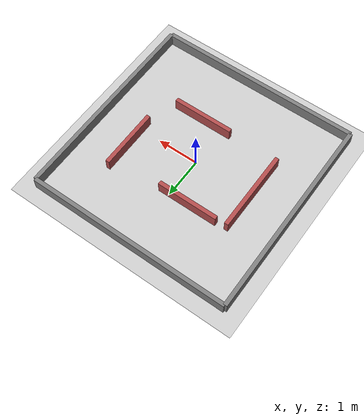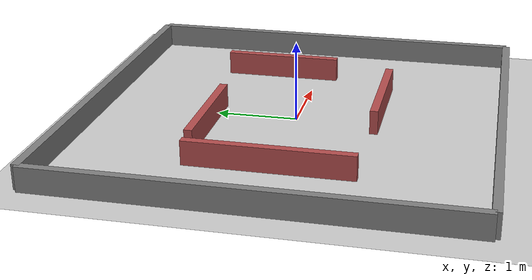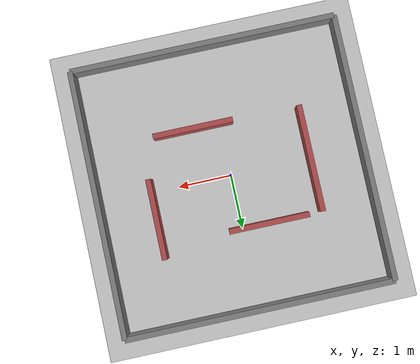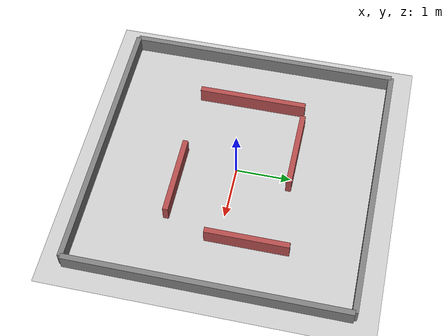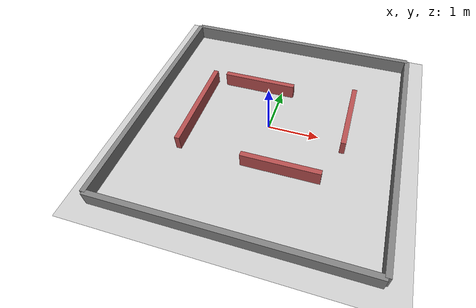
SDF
<?xml version="1.0" ?>
<sdf version="1.6">
  <world name="default">

    <include>
      <uri>model://ground_plane</uri>
    </include>

    <include>
      <uri>model://sun</uri>
    </include>

    <!-- Maze walls -->

    <!-- Outer walls -->
    <model name="wall_outer_1">
      <static>true</static>
      <pose>0 -2.5 0.15 0 0 0</pose>
      <link name="link">
        <collision name="collision">
          <geometry>
            <box><size>5 0.1 0.3</size></box>
          </geometry>
        </collision>
        <visual name="visual">
          <geometry>
            <box><size>5 0.1 0.3</size></box>
          </geometry>
          <material>
            <ambient>0.5 0.5 0.5 1</ambient>
          </material>
        </visual>
      </link>
    </model>

    <model name="wall_outer_2">
      <static>true</static>
      <pose>0 2.5 0.15 0 0 0</pose>
      <link name="link">
        <collision name="collision">
          <geometry>
            <box><size>5 0.1 0.3</size></box>
          </geometry>
        </collision>
        <visual name="visual">
          <geometry>
            <box><size>5 0.1 0.3</size></box>
          </geometry>
          <material>
            <ambient>0.5 0.5 0.5 1</ambient>
          </material>
        </visual>
      </link>
    </model>

    <model name="wall_outer_3">
      <static>true</static>
      <pose>-2.5 0 0.15 0 0 1.5708</pose>
      <link name="link">
        <collision name="collision">
          <geometry>
            <box><size>5 0.1 0.3</size></box>
          </geometry>
        </collision>
        <visual name="visual">
          <geometry>
            <box><size>5 0.1 0.3</size></box>
          </geometry>
          <material>
            <ambient>0.5 0.5 0.5 1</ambient>
          </material>
        </visual>
      </link>
    </model>

    <model name="wall_outer_4">
      <static>true</static>
      <pose>2.5 0 0.15 0 0 1.5708</pose>
      <link name="link">
        <collision name="collision">
          <geometry>
            <box><size>5 0.1 0.3</size></box>
          </geometry>
        </collision>
        <visual name="visual">
          <geometry>
            <box><size>5 0.1 0.3</size></box>
          </geometry>
          <material>
            <ambient>0.5 0.5 0.5 1</ambient>
          </material>
        </visual>
      </link>
    </model>

    <!-- Inner maze walls -->
    <model name="wall_inner_1">
      <static>true</static>
      <pose>-1.5 0 0.15 0 0 1.5708</pose>
      <link name="link">
        <collision name="collision">
          <geometry>
            <box><size>2 0.1 0.3</size></box>
          </geometry>
        </collision>
        <visual name="visual">
          <geometry>
            <box><size>2 0.1 0.3</size></box>
          </geometry>
          <material>
            <ambient>0.7 0.3 0.3 1</ambient>
          </material>
        </visual>
      </link>
    </model>

    <model name="wall_inner_2">
      <static>true</static>
      <pose>-0.5 1 0.15 0 0 0</pose>
      <link name="link">
        <collision name="collision">
          <geometry>
            <box><size>1.5 0.1 0.3</size></box>
          </geometry>
        </collision>
        <visual name="visual">
          <geometry>
            <box><size>1.5 0.1 0.3</size></box>
          </geometry>
          <material>
            <ambient>0.7 0.3 0.3 1</ambient>
          </material>
        </visual>
      </link>
    </model>

    <model name="wall_inner_3">
      <static>true</static>
      <pose>0.5 -1 0.15 0 0 0</pose>
      <link name="link">
        <collision name="collision">
          <geometry>
            <box><size>1.5 0.1 0.3</size></box>
          </geometry>
        </collision>
        <visual name="visual">
          <geometry>
            <box><size>1.5 0.1 0.3</size></box>
          </geometry>
          <material>
            <ambient>0.7 0.3 0.3 1</ambient>
          </material>
        </visual>
      </link>
    </model>

    <model name="wall_inner_4">
      <static>true</static>
      <pose>1.5 0.5 0.15 0 0 1.5708</pose>
      <link name="link">
        <collision name="collision">
          <geometry>
            <box><size>1.5 0.1 0.3</size></box>
          </geometry>
        </collision>
        <visual name="visual">
          <geometry>
            <box><size>1.5 0.1 0.3</size></box>
          </geometry>
          <material>
            <ambient>0.7 0.3 0.3 1</ambient>
          </material>
        </visual>
      </link>
    </model>

  </world>
</sdf>
